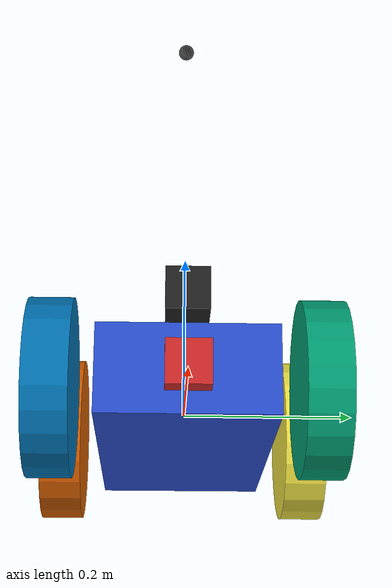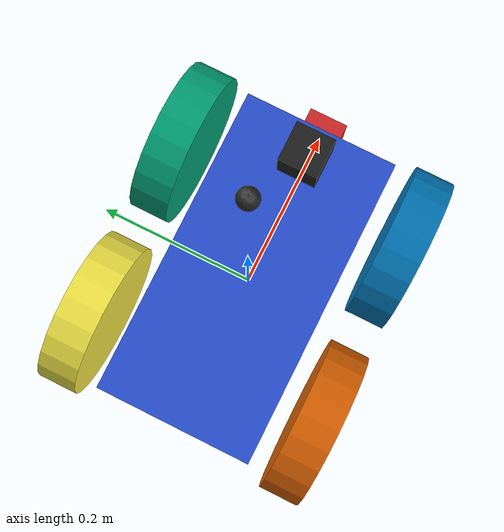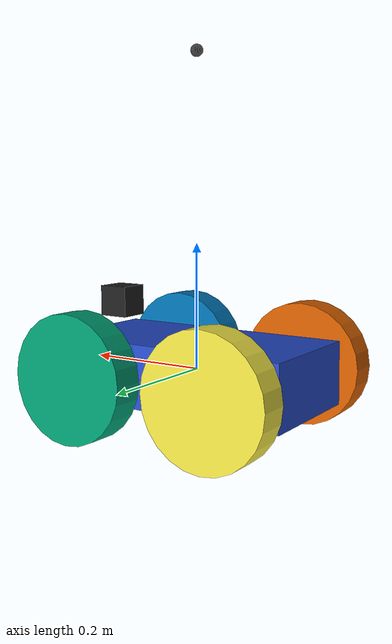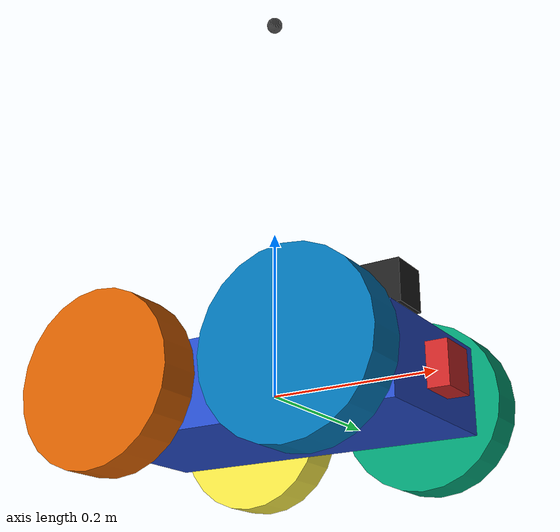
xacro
<?xml version='1.0'?>

<robot name="bocbot"
  xmlns:xacro="http://www.ros.org/wiki/xacro">

  <xacro:include filename="bocbot.gazebo" />

  <link name="robot_footprint"></link>

  <joint name="robot_footprint_joint" type="fixed">
    <origin xyz="0 0 0" rpy="0 0 0" />
    <parent link="robot_footprint"/>
    <child link="base_link" />
  </joint>

  <link name='base_link'>
    <pose>0 0 0.1 0 0 0</pose>

    <inertial>
      <mass value="15.0"/>
      <origin xyz="0.0 0 0" rpy=" 0 0 0"/>
      <inertia ixx="0.1" ixy="0" ixz="0" iyy="0.1" iyz="0" izz="0.1" />
    </inertial>

    <collision name='collision'>
      <origin xyz="0 0 0" rpy=" 0 0 0"/>
      <geometry>
        <box size=".4 .2 .1"/>
      </geometry>
    </collision>

    <visual name='base_link_visual'>
      <origin xyz="0 0 0" rpy=" 0 0 0"/>
      <geometry>
        <box size=".4 .2 .1"/>
      </geometry>
    </visual>

  </link>
  <link name="front_left_wheel">
    <inertial>
      <mass value="5.0"/>
      <origin xyz="0.0 0 0" rpy=" 0 1.5707 1.5707"/>
      <inertia ixx="0.1" ixy="0" ixz="0" iyy="0.1" iyz="0" izz="0.1" />
    </inertial>

    <visual>
      <origin xyz="0.0 0 0" rpy=" 0 1.5707 1.5707"/>
      <geometry>
        <cylinder length="0.05" radius="0.1"/>
      </geometry>
    </visual>

    <collision>
      <origin xyz="0.0 0 0" rpy=" 0 1.5707 1.5707"/>
      <geometry>
        <cylinder length="0.05" radius="0.1"/>
      </geometry>
    </collision>
  </link>

  <link name="back_left_wheel">
    <inertial>
      <mass value="5.0"/>
      <origin xyz="0.0 0 0" rpy=" 0 1.5707 1.5707"/>
      <inertia ixx="0.1" ixy="0" ixz="0" iyy="0.1" iyz="0" izz="0.1" />
    </inertial>

    <visual>
      <origin xyz="0.0 0 0" rpy=" 0 1.5707 1.5707"/>
      <geometry>
        <cylinder length="0.05" radius="0.1"/>
      </geometry>
    </visual>

    <collision>
      <origin xyz="0.0 0 0" rpy=" 0 1.5707 1.5707"/>
      <geometry>
        <cylinder length="0.05" radius="0.1"/>
      </geometry>
    </collision>
  </link>

  <link name="front_right_wheel">
    <inertial>
      <mass value="5.0"/>
      <origin xyz="0.0 0 0" rpy=" 0 1.5707 1.5707"/>
      <inertia ixx="0.1" ixy="0" ixz="0" iyy="0.1" iyz="0" izz="0.1" />
    </inertial>

    <visual>
      <origin xyz="0.0 0 0" rpy=" 0 1.5707 1.5707"/>
      <geometry>
        <cylinder length="0.05" radius="0.1"/>
      </geometry>
    </visual>

    <collision>
      <origin xyz="0.0 0 0" rpy=" 0 1.5707 1.5707"/>
      <geometry>
        <cylinder length="0.05" radius="0.1"/>
      </geometry>
    </collision>
  </link>

  <link name="back_right_wheel">
    <inertial>
      <mass value="5.0"/>
      <origin xyz="0.0 0 0" rpy=" 0 1.5707 1.5707"/>
      <inertia ixx="0.1" ixy="0" ixz="0" iyy="0.1" iyz="0" izz="0.1" />
    </inertial>

    <visual>
      <origin xyz="0.0 0 0" rpy=" 0 1.5707 1.5707"/>
      <geometry>
        <cylinder length="0.05" radius="0.1"/>
      </geometry>
    </visual>

    <collision>
      <origin xyz="0.0 0 0" rpy=" 0 1.5707 1.5707"/>
      <geometry>
        <cylinder length="0.05" radius="0.1"/>
      </geometry>
    </collision>
  </link>

  <link name="camera">
    <inertial>
      <mass value="0.1"/>
      <origin xyz="0.05 0.05 0.05" rpy=" 0 0 0"/>
      <inertia ixx="1e-6" ixy="0" ixz="0" iyy="1e-6" iyz="0" izz="1e-6" />
    </inertial>

    <visual name="camera_visual">
      <origin xyz="0 0 0" rpy="0 0 0" />
      <geometry>
        <box size="0.05 0.05 0.05"/>
      </geometry>
    </visual>

    <collision name="camera_colision">
      <origin xyz="0 0 0" rpy="0 0 0" />
      <geometry>
        <box size="0.05 0.05 0.05"/>
      </geometry>
    </collision>
  </link>

  <link name="hokuyo">
    <inertial>
      <mass value="1e-5"/>
      <origin xyz="0 0 0" rpy=" 0 0 0"/>
      <inertia ixx="1e-6" ixy="0" ixz="0" iyy="1e-6" iyz="0" izz="1e-6" />
    </inertial>

    <visual name="hokuyo_visual">
      <origin xyz="0 0 0" rpy="0 0 0" />
      <geometry>
        <box size="0.05 0.05 0.05"/>
      </geometry>
    </visual>

    <collision name="hokuyo_colision">
      <origin xyz="0 0 0" rpy="0 0 0" />
      <geometry>
        <box size="0.1 0.1 0.1"/>
      </geometry>
    </collision>
  </link>

  <joint type="continuous" name="front_left_wheel_joint">
    <origin xyz="0.12 0.15 0" rpy="0 0 0"/>
    <child link="front_left_wheel"/>
    <parent link="base_link"/>
    <axis xyz="0 1 0" rpy="0 0 0"/>
    <limit effort="10000" velocity="1000"/>
    <dynamics damping="1.0" friction="1.0"/>
  </joint>

  <joint type="continuous" name="front_right_wheel_joint">
    <origin xyz="0.12 -0.15 0" rpy="0 0 0"/>
    <child link="front_right_wheel"/>
    <parent link="base_link"/>
    <axis xyz="0 1 0" rpy="0 0 0"/>
    <limit effort="10000" velocity="1000"/>
    <dynamics damping="1.0" friction="1.0"/>
  </joint>

  <joint type="continuous" name="back_left_wheel_joint">
    <origin xyz="-0.12 0.15 0" rpy="0 0 0"/>
    <child link="back_left_wheel"/>
    <parent link="base_link"/>
    <axis xyz="0 1 0" rpy="0 0 0"/>
    <limit effort="10000" velocity="1000"/>
    <dynamics damping="1.0" friction="1.0"/>
  </joint>

  <joint type="continuous" name="back_right_wheel_joint">
    <origin xyz="-0.12 -0.15 0" rpy="0 0 0"/>
    <child link="back_right_wheel"/>
    <parent link="base_link"/>
    <axis xyz="0 1 0" rpy="0 0 0"/>
    <limit effort="10000" velocity="1000"/>
    <dynamics damping="1.0" friction="1.0"/>
  </joint>

  <joint type="fixed" name="camera_joint">
    <origin xyz="0.2 0 0" rpy="0 0 0"/>
    <child link="camera"/>
    <parent link="base_link"/>
    <axis xyz="0 1 0" rpy="0 0 0"/>
  </joint>

  <joint type="fixed" name="hokuyo_joint">
    <origin xyz="0.15 0 0.1" rpy="0 0 0"/>
    <child link="hokuyo"/>
    <parent link="base_link"/>
    <axis xyz="0 1 0" rpy="0 0 0"/>
  </joint>

  <gazebo reference="base_link">
    <material>Gazebo/Blue</material>
  </gazebo>

  <gazebo reference="camera">
    <material>Gazebo/Red</material>
  </gazebo>

  <gazebo reference="hokuyo">
    <material>Gazebo/Black</material>
  </gazebo>

	<link name="camera0_link">
        <visual>
          <origin xyz=" 0 0 0 " rpy="0 0 0" />
          <geometry>
          <sphere radius="0.01" />
          </geometry>
          <material name="black">
          <color rgba="0 0 0 0.95"/>
          </material>
        </visual>
  </link>

	<joint name="realsense_frame_joint" type="fixed">
		<origin xyz="0 0 0.5" rpy="0 0 0" />
		<parent link="base_link"/>
		<child link="camera0_link"/>
	</joint>

  <link name="camera1_link">
    <visual>
      <origin xyz=" 0 0 0 " rpy="0 0 0" />
      <geometry>
      <sphere radius="0.01" />
      </geometry>
      <material name="black">
      <color rgba="0 0 0 0.95"/>
      </material>
    </visual>
  </link>

  <joint name="camera1_joint" type="fixed">
    <origin xyz="0.00 0 0.5" rpy="0 0 1.0471975511965976"/>
    <parent link="base_link"/>
    <child link="camera1_link"/>
  </joint>

  <link name="camera2_link">
    <visual>
      <origin xyz=" 0 0 0 " rpy="0 0 0" />
      <geometry>
      <sphere radius="0.01" />
      </geometry>
      <material name="black">
      <color rgba="0 0 0 0.95"/>
      </material>
    </visual>
  </link>

  <joint name="camera2_joint" type="fixed">
    <origin xyz="0.00 0 0.5" rpy="0 0 2.0943951023931953"/>
    <parent link="base_link"/>
    <child link="camera2_link"/>
  </joint>

  <link name="camera3_link">
    <visual>
      <origin xyz=" 0 0 0 " rpy="0 0 0" />
      <geometry>
      <sphere radius="0.01" />
      </geometry>
      <material name="black">
      <color rgba="0 0 0 0.95"/>
      </material>
    </visual>
  </link>

  <joint name="camera3_joint" type="fixed">
    <origin xyz="0.00 0 0.5" rpy="0 0 3.141592653589793"/>
    <parent link="base_link"/>
    <child link="camera3_link"/>
  </joint>

  <link name="camera4_link">
    <visual>
      <origin xyz=" 0 0 0 " rpy="0 0 0" />
      <geometry>
      <sphere radius="0.01" />
      </geometry>
      <material name="black">
      <color rgba="0 0 0 0.95"/>
      </material>
    </visual>
  </link>

  <joint name="camera4_joint" type="fixed">
    <origin xyz="0.00 0 0.5" rpy="0 0 -2.0943951023931953"/>
    <parent link="base_link"/>
    <child link="camera4_link"/>
  </joint>

  <link name="camera5_link">
    <visual>
      <origin xyz=" 0 0 0 " rpy="0 0 0" />
      <geometry>
      <sphere radius="0.01" />
      </geometry>
      <material name="black">
      <color rgba="0 0 0 0.95"/>
      </material>
    </visual>
  </link>

  <joint name="camera5_joint" type="fixed">
    <origin xyz="0.00 0 0.5" rpy="0 0 -1.0471975511965976 "/>
    <parent link="base_link"/>
    <child link="camera5_link"/>
  </joint>

</robot>
